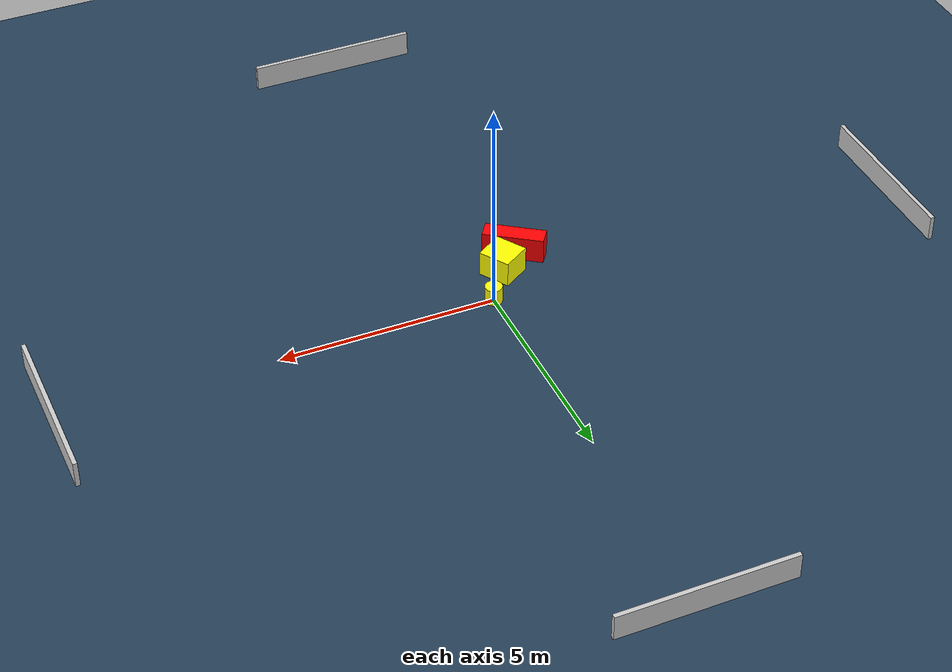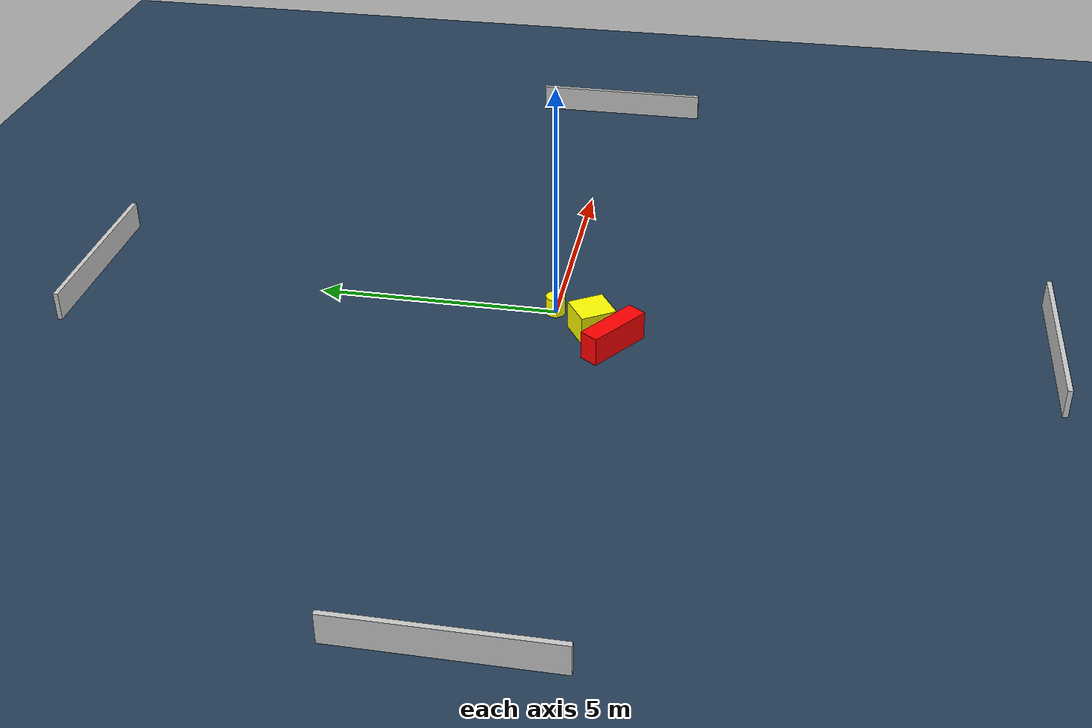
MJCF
<?xml version="1.0" ?>
<mujoco model="generated_environment">
  <option timestep="0.01" integrator="RK4" cone="elliptic"/>
  <default>
    <geom density="1"/>
  </default>
  <asset>
    <texture builtin="gradient" height="3072" name="skybox" rgb1="0.3 0.5 0.7" rgb2="0 0 0" type="skybox" width="512"/>
    <texture builtin="checker" height="300" name="groundplane" rgb1="0.2 0.3 0.4" rgb2="0.1 0.2 0.3" type="2d" width="300"/>
    <material name="groundplane" reflectance="0.2" texrepeat="5 5" texture="groundplane"/>
  </asset>
  <worldbody>
    <light dir="0 0 -1" directional="true" pos="0 0 1.5"/>
    <geom condim="3" friction="0.5 0.005 0.001" material="groundplane" name="floor" pos="0 0 0" size="0 0 0.05" type="plane"/>
    <body name="walls">
      <geom name="wall_1" condim="4" pos="-10.0 0.0 0.3" rgba="0.800000011920929 0.800000011920929 0.800000011920929 1.0" size="0.05 2.0 0.3" type="box"/>
      <geom name="wall_2" condim="4" pos="10.0 0.0 0.3" rgba="0.800000011920929 0.800000011920929 0.800000011920929 1.0" size="0.05 2.0 0.3" type="box"/>
      <geom name="wall_3" condim="4" pos="0.0 -10.0 0.3" rgba="0.800000011920929 0.800000011920929 0.800000011920929 1.0" size="2.0 0.05 0.3" type="box"/>
      <geom name="wall_4" condim="4" pos="0.0 10.0 0.3" rgba="0.800000011920929 0.800000011920929 0.800000011920929 1.0" size="2.0 0.05 0.3" type="box"/>
    </body>
    <body name="robot">
      <joint name="joint_x" type="slide" pos="0 0 0" axis="1 0 0"/>
      <joint name="joint_y" type="slide" pos="0 0 0" axis="0 1 0"/>
      <geom name="robot" type="cylinder" pos="0.0 0.0 0.2" size="0.2 0.2 0.0" mass="5.0" friction="1.0 0.005 0.0001" condim="4" rgba="1.0 1.0 0.0 1.0"/>
    </body>
    <body name="obstacle_1_movable">
      <geom name="obstacle_1_movable" condim="4" pos="-0.5961602095598366 -0.8474316106254197 0.3" euler="0 0 302.1526141099853" friction="0.0 0.005 0.001" rgba="1.0 1.0 0.0 1.0" size="0.3804253600708185 0.3613695987194558 0.3" type="box" mass="0.1"/>
      <joint type="free"/>
    </body>
    <body name="obstacle_2_static">
      <geom name="obstacle_2_static" condim="4" pos="-1.1042066949794924 -1.3452005580847042 0.3" euler="0 0 54.973544095056276" friction="0.0 0.005 0.001" rgba="1.0 0.0 0.0 1.0" size="0.20741591460881031 0.7044103423581631 0.3" type="box"/>
    </body>
  </worldbody>
  <actuator>
    <motor name="actuator_x" joint="joint_x" gear="1" ctrlrange="-1 1"/>
    <motor name="actuator_y" joint="joint_y" gear="1" ctrlrange="-1 1"/>
  </actuator>
</mujoco>
